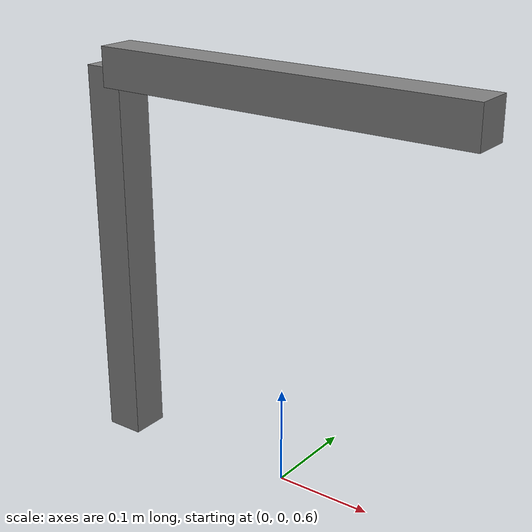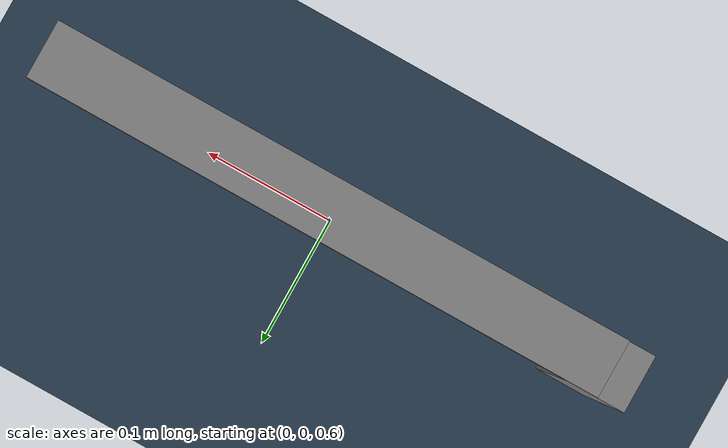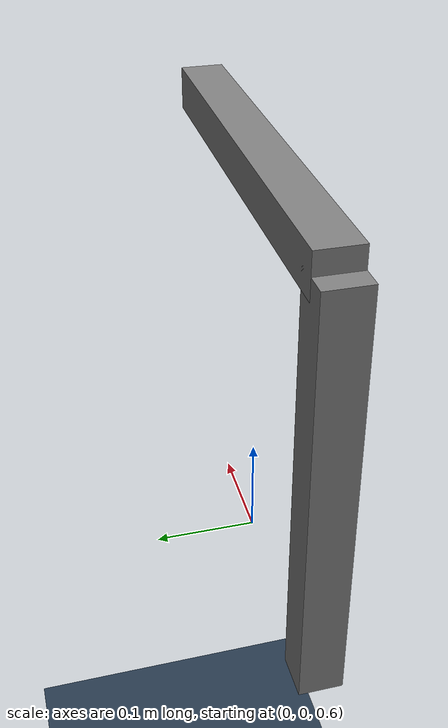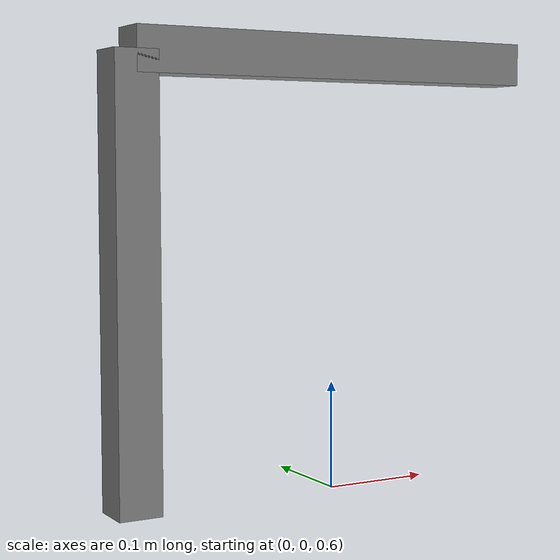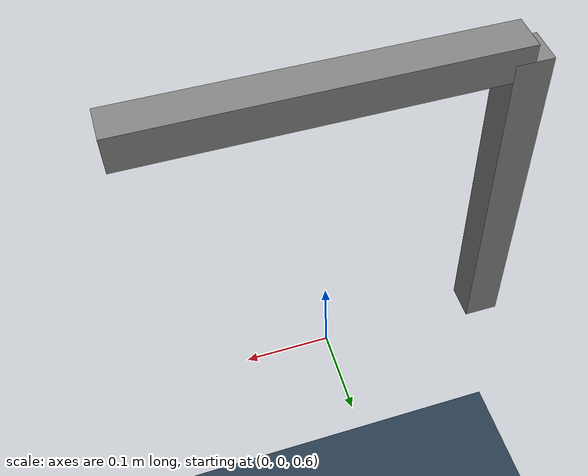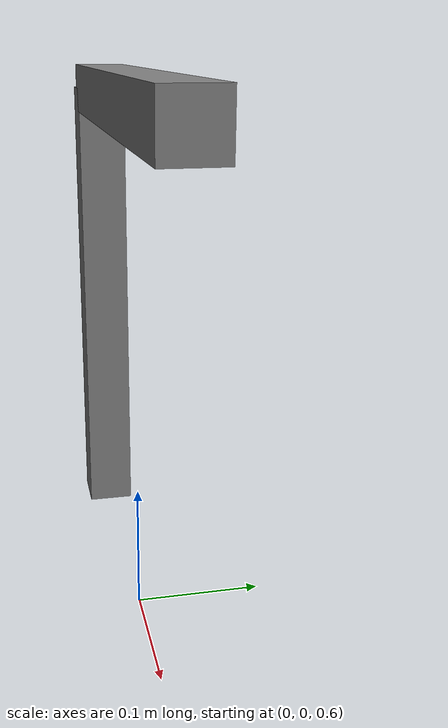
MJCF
<mujoco model="two_bars">
    <default>
        <joint type="hinge" frictionloss="0.1" damping='2' />
    </default>

    <asset>
        <texture type="skybox" builtin="gradient" rgb1="1 1 1" rgb2=".6 .8 1" width="256" height="256" />
        <texture name="texplane" type="2d" builtin="checker" rgb1=".2 .3 .4" rgb2=".1 0.15 0.2" width="512" height="512"/>
        <material name="matplane" texture="texplane" texrepeat="1 1" texuniform="true" />
    </asset>

    <worldbody>
        <light directional="true" diffuse=".4 .4 .4" specular="0.1 0.1 0.1" pos="0 0 3" dir="0 0 -1" />
        <geom name="ground" type="plane" size="0 0 1" pos="0 0 0" quat="1 0 0 0" material="matplane" condim="3" />

        <body name="b0" pos="0 0 1">
            <geom type="box" size="0.2 0.02 0.02"/>
            <body name="b1" pos="-0.2 0 -0.2" euler="0 90 0">
                <geom type="box" size="0.2 0.02 0.02"/>
                <joint name="j0" type="hinge" pos="-0.2 0 0" axis="0 1 0" />
            </body>
        </body>
    </worldbody>

    <contact>
        <exclude name="e0" body1="b0" body2="b1" />
    </contact>

    <actuator>
        <position joint="j0" ctrllimited="true" ctrlrange="-1.0 1.0" kp="30" />
    </actuator>
</mujoco>
